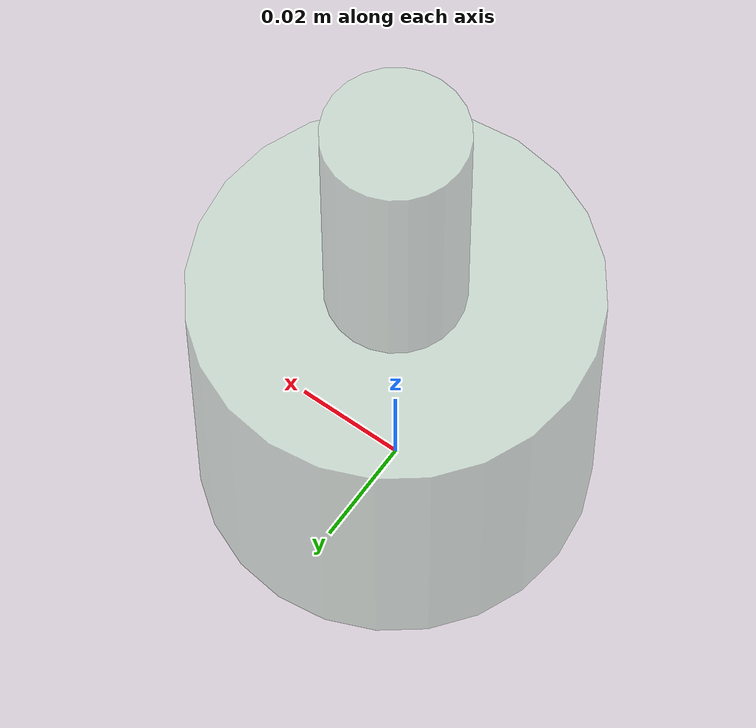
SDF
<?xml version="1.0"?>
<sdf version="1.6">
  <!-- 锥形瓶(可抓取):淡绿玻璃色,瓶身 + 细颈,直径 0.07 < 夹爪开度。 -->
  <model name="erlenmeyer_flask">
    <link name="link">
      <inertial>
        <mass>0.06</mass>
        <inertia>
          <ixx>9.04e-5</ixx><ixy>0</ixy><ixz>0</ixz>
          <iyy>9.04e-5</iyy><iyz>0</iyz><izz>3.68e-5</izz>
        </inertia>
      </inertial>
      <collision name="collision_body">
        <pose>0 0 0.03 0 0 0</pose>
        <geometry>
          <cylinder>
            <radius>0.035</radius>
            <length>0.06</length>
          </cylinder>
        </geometry>
        <surface>
          <friction><ode><mu>1.0</mu><mu2>1.0</mu2></ode></friction>
          <contact>
            <ode>
              <kp>1e6</kp>
              <kd>1.0</kd>
              <min_depth>0.001</min_depth>
              <max_vel>0.01</max_vel>
            </ode>
          </contact>
        </surface>
      </collision>
      <collision name="collision_neck">
        <pose>0 0 0.085 0 0 0</pose>
        <geometry>
          <cylinder>
            <radius>0.012</radius>
            <length>0.05</length>
          </cylinder>
        </geometry>
        <surface>
          <friction><ode><mu>1.0</mu><mu2>1.0</mu2></ode></friction>
          <contact>
            <ode>
              <kp>1e6</kp>
              <kd>1.0</kd>
              <min_depth>0.001</min_depth>
              <max_vel>0.01</max_vel>
            </ode>
          </contact>
        </surface>
      </collision>
      <visual name="visual_body">
        <transparency>0.30</transparency>
        <pose>0 0 0.03 0 0 0</pose>
        <geometry>
          <cylinder>
            <radius>0.035</radius>
            <length>0.06</length>
          </cylinder>
        </geometry>
        <material>
          <ambient>0.55 0.75 0.60 0.4</ambient>
          <diffuse>0.70 0.88 0.75 0.4</diffuse>
          <specular>1.0 1.0 1.0 1.0</specular>
          <shininess>128</shininess>
          <double_sided>true</double_sided>
        </material>
      </visual>
      <visual name="visual_neck">
        <transparency>0.30</transparency>
        <pose>0 0 0.085 0 0 0</pose>
        <geometry>
          <cylinder>
            <radius>0.012</radius>
            <length>0.05</length>
          </cylinder>
        </geometry>
        <material>
          <ambient>0.55 0.75 0.60 0.4</ambient>
          <diffuse>0.70 0.88 0.75 0.4</diffuse>
          <specular>1.0 1.0 1.0 1.0</specular>
          <shininess>128</shininess>
          <double_sided>true</double_sided>
        </material>
      </visual>
    </link>
  </model>
</sdf>
